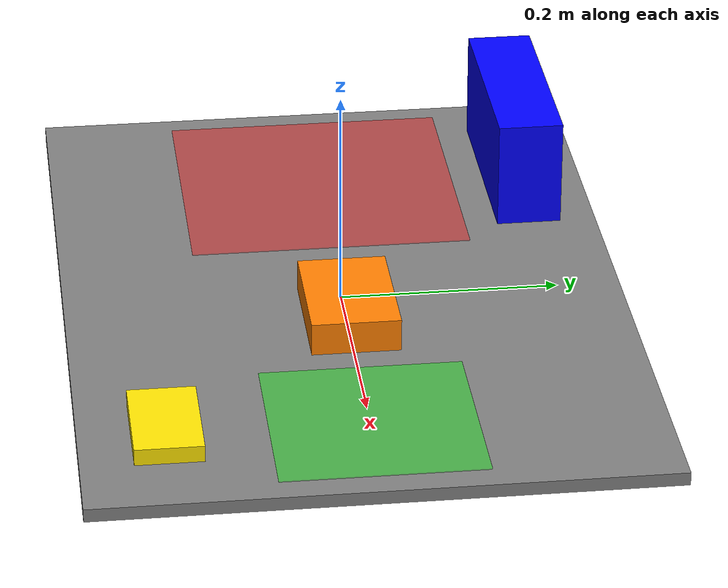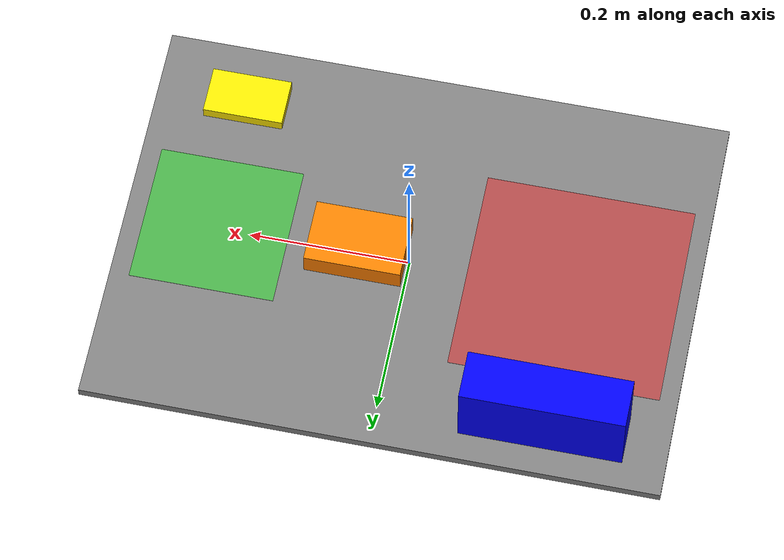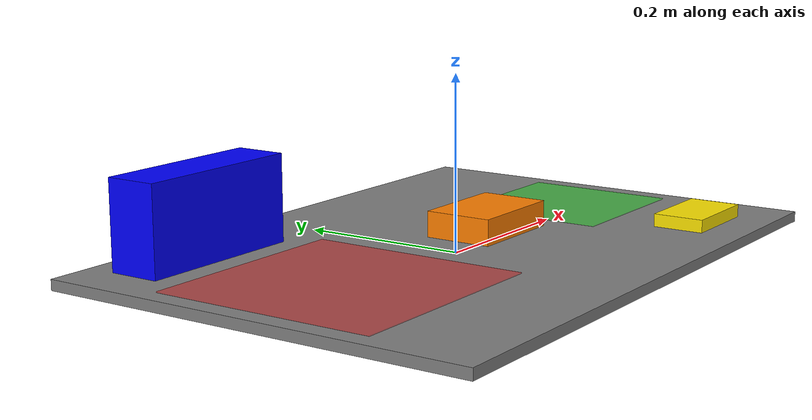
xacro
<?xml version="1.0"?>
<robot name="workcell" xmlns:xacro="http://www.ros.org/wiki/xacro">

<!-- ===================== Properties (edit these) ===================== -->

<!-- Base plate: real plate is 28 x 20 in -->
<xacro:property name="plate_x" value="0.7112"/>
<xacro:property name="plate_y" value="0.508"/>
<xacro:property name="plate_t" value="0.012"/>   <!-- thickness -->

<!-- Robot positions (center of each robot's footprint) -->
<xacro:property name="ar4_x"   value="-0.2032"/>
<xacro:property name="ar4_y"   value="0.0"/>
<xacro:property name="ar4_zone_size" value="0.26"/>

<xacro:property name="cobot_x" value="0.2413"/>
<xacro:property name="cobot_y" value="0.0"/>
<xacro:property name="cobot_yaw" value="${pi}"/>  <!-- faces the AR4 -->
<xacro:property name="cobot_zone_size" value="0.18"/>

<!-- Insert fixture: holds the part. Cobot places, AR4 presses. -->
<xacro:property name="fixture_x" value="0.0635"/>
<xacro:property name="fixture_y" value="0.0"/>
<xacro:property name="fixture_size_x" value="0.12"/>
<xacro:property name="fixture_size_y" value="0.08"/>
<xacro:property name="fixture_size_z" value="0.03"/>

<!-- Insert tray: cobot picks inserts here. -->
<xacro:property name="tray_x" value="0.2413"/>
<xacro:property name="tray_y" value="-0.1778"/>
<xacro:property name="tray_size_x" value="0.1"/>
<xacro:property name="tray_size_y" value="0.06"/>
<xacro:property name="tray_size_z" value="0.015"/>

<!-- Tool changer dock (AR4 only). Slots are spaced along X. -->
<xacro:property name="dock_x" value="-0.2032"/>
<xacro:property name="dock_y" value="0.1905"/>
<xacro:property name="dock_size_x" value="0.2"/>
<xacro:property name="dock_size_y" value="0.06"/>
<xacro:property name="dock_size_z" value="0.1"/>
<xacro:property name="slot_spacing" value="0.1"/>

<xacro:property name="zone_t" value="0.001"/>     <!-- zone marker thickness -->

<!-- ===================== Materials ===================== -->
<material name="gray">              <color rgba="0.5 0.5 0.5 1"/></material>
<material name="blue">              <color rgba="0 0 1 1"/></material>
<material name="orange">            <color rgba="1 0.5 0 1"/></material>
<material name="yellow">            <color rgba="1 0.9 0 1"/></material>
<material name="red_transparent">   <color rgba="1 0 0 0.4"/></material>
<material name="green_transparent"> <color rgba="0 1 0 0.4"/></material>

<!-- ===================== Macros ===================== -->

<!-- A box resting on the plate. Its frame is at the box center, so the joint
     lifts it by plate_t + size_z/2. collision:=false for markers that aren't
     physical objects. -->
<xacro:macro name="box_on_plate" params="name size_x size_y size_z x y material collision:=true">
    <link name="${name}">
        <visual>
            <origin xyz="0 0 0" rpy="0 0 0"/>
            <geometry><box size="${size_x} ${size_y} ${size_z}"/></geometry>
            <material name="${material}"/>
        </visual>
        <xacro:if value="${collision}">
            <collision>
                <origin xyz="0 0 0" rpy="0 0 0"/>
                <geometry><box size="${size_x} ${size_y} ${size_z}"/></geometry>
            </collision>
        </xacro:if>
    </link>
    <joint name="plate_to_${name}" type="fixed">
        <parent link="plate"/>
        <child link="${name}"/>
        <origin xyz="${x} ${y} ${plate_t + size_z/2}" rpy="0 0 0"/>
    </joint>
</xacro:macro>

<!-- An empty named frame (no geometry) that code and MoveIt target by name. -->
<xacro:macro name="frame" params="name parent xyz rpy:='0 0 0'">
    <link name="${name}"/>
    <joint name="${parent}_to_${name}" type="fixed">
        <parent link="${parent}"/>
        <child link="${name}"/>
        <origin xyz="${xyz}" rpy="${rpy}"/>
    </joint>
</xacro:macro>

<!-- ===================== Cell ===================== -->

<link name="world"/>

<link name="plate">
    <visual>
        <origin xyz="0 0 ${plate_t/2}" rpy="0 0 0"/>
        <geometry><box size="${plate_x} ${plate_y} ${plate_t}"/></geometry>
        <material name="gray"/>
    </visual>
    <collision>
        <origin xyz="0 0 ${plate_t/2}" rpy="0 0 0"/>
        <geometry><box size="${plate_x} ${plate_y} ${plate_t}"/></geometry>
    </collision>
</link>

<joint name="world_to_plate" type="fixed">
    <parent link="world"/>
    <child link="plate"/>
    <origin xyz="0 0 0" rpy="0 0 0"/>
</joint>

<!-- Objects on the plate -->
<xacro:box_on_plate name="tool_changer_dock"
    size_x="${dock_size_x}" size_y="${dock_size_y}" size_z="${dock_size_z}"
    x="${dock_x}" y="${dock_y}" material="blue"/>

<xacro:box_on_plate name="insert_fixture"
    size_x="${fixture_size_x}" size_y="${fixture_size_y}" size_z="${fixture_size_z}"
    x="${fixture_x}" y="${fixture_y}" material="orange"/>

<xacro:box_on_plate name="insert_tray"
    size_x="${tray_size_x}" size_y="${tray_size_y}" size_z="${tray_size_z}"
    x="${tray_x}" y="${tray_y}" material="yellow"/>

<!-- Robot zone markers (visual only, robots stand on them) -->
<xacro:box_on_plate name="ar4_zone"
    size_x="${ar4_zone_size}" size_y="${ar4_zone_size}" size_z="${zone_t}"
    x="${ar4_x}" y="${ar4_y}" material="red_transparent" collision="false"/>

<xacro:box_on_plate name="cobot_zone"
    size_x="${cobot_zone_size}" size_y="${cobot_zone_size}" size_z="${zone_t}"
    x="${cobot_x}" y="${cobot_y}" material="green_transparent" collision="false"/>

<!-- Robot mount frames: on the plate surface, where each robot URDF attaches -->
<xacro:frame name="ar4_mount"   parent="plate" xyz="${ar4_x} ${ar4_y} ${plate_t}"/>
<xacro:frame name="cobot_mount" parent="plate" xyz="${cobot_x} ${cobot_y} ${plate_t}" rpy="0 0 ${cobot_yaw}"/>

<!-- Target frames: on the top surface of their object, so they follow it -->
<xacro:frame name="insert_target" parent="insert_fixture"    xyz="0 0 ${fixture_size_z/2}"/>
<xacro:frame name="insert_pick"   parent="insert_tray"       xyz="0 0 ${tray_size_z/2}"/>
<xacro:frame name="tool_slot_1"   parent="tool_changer_dock" xyz="${-slot_spacing/2} 0 ${dock_size_z/2}"/>
<xacro:frame name="tool_slot_2"   parent="tool_changer_dock" xyz="${slot_spacing/2} 0 ${dock_size_z/2}"/>

</robot>
